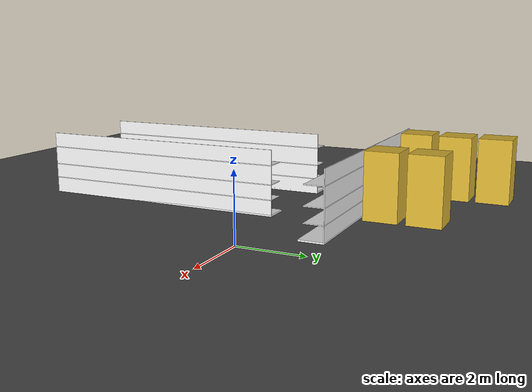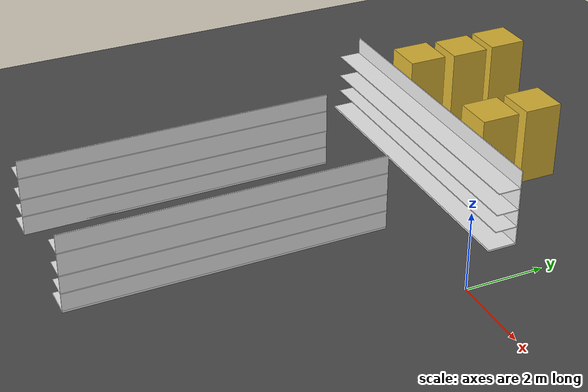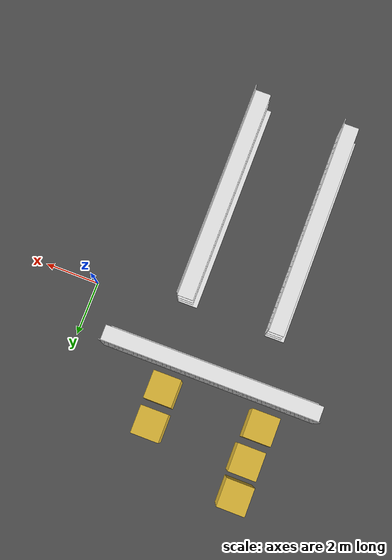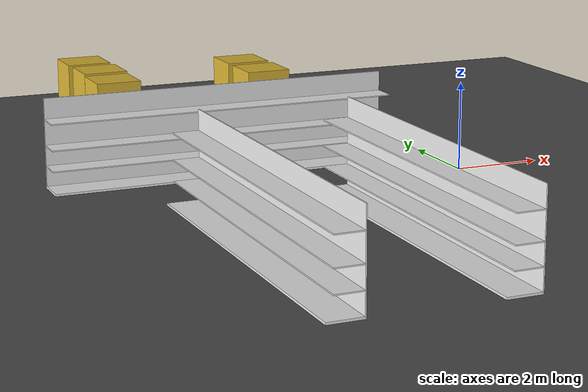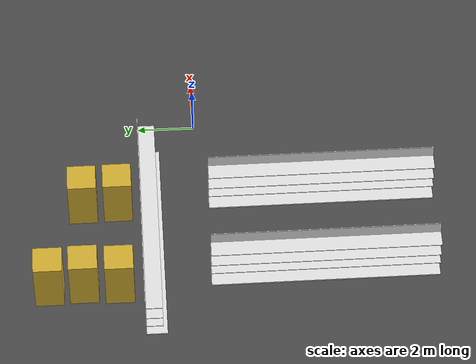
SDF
<sdf version="1.6">
 <world name="default">
  <model name="ground_plane">
   <static>1</static>
   <link name="link">
    <collision name="collision">
     <geometry><plane><normal>0 0 1</normal><size>100 100</size></plane></geometry>
     <surface>
      <contact><collide_bitmask>65535</collide_bitmask></contact>
      <friction><ode><mu>100</mu><mu2>50</mu2></ode></friction>
     </surface>
    </collision>
    <visual name="visual">
     <cast_shadows>0</cast_shadows>
     <geometry><plane><normal>0 0 1</normal><size>100 100</size></plane></geometry>
     <material>
      <script>
       <uri>model://asphalt_plane/materials/scripts</uri>
       <uri>model://asphalt_plane/materials/textures</uri>
       <name>vrc/asphalt</name>
      </script>
     </material>
    </visual>
   </link>
  </model>
  <model name="LongShelfx4">
   <link name="link_0">
    <inertial>
     <mass>0.38468</mass>
     <inertia>
      <ixx>0.0321196</ixx>
      <ixy>0</ixy>
      <ixz>0</ixz>
      <iyy>2.41752</iyy>
      <iyz>0</iyz>
      <izz>2.44951</izz>
     </inertia>
    </inertial>
    <pose>-4.95428 0.681381 -0.638013 0 -0 0</pose>
    <visual name="visual">
     <geometry><box><size>8 0.75 0.05</size></box></geometry>
     <material>
      <lighting>1</lighting>
      <script><uri>file://media/materials/scripts/gazebo.material</uri><name>Gazebo/White</name></script>
      <shader type="vertex"><normal_map>__default__</normal_map></shader>
      <ambient>0.3 0.3 0.3 1</ambient>
      <diffuse>0.7 0.7 0.7 1</diffuse>
      <specular>0.01 0.01 0.01 1</specular>
      <emissive>0 0 0 1</emissive>
     </material>
    </visual>
    <collision name="collision">
     <geometry><box><size>8 0.75 0.05</size></box></geometry>
     <surface>
      <friction>
       <ode><mu>1</mu><mu2>1</mu2><fdir1>0 0 0</fdir1><slip1>0</slip1><slip2>0</slip2></ode>
       <torsional>
        <coefficient>1</coefficient>
        <patch_radius>0</patch_radius>
        <surface_radius>0</surface_radius>
        <use_patch_radius>1</use_patch_radius>
        <ode><slip>0</slip></ode>
       </torsional>
      </friction>
      <bounce><restitution_coefficient>0</restitution_coefficient><threshold>1e+06</threshold></bounce>
      <contact>
       <collide_without_contact>0</collide_without_contact>
       <collide_without_contact_bitmask>1</collide_without_contact_bitmask>
       <collide_bitmask>1</collide_bitmask>
       <ode>
        <soft_cfm>0</soft_cfm>
        <soft_erp>0.2</soft_erp>
        <kp>1e+13</kp>
        <kd>1</kd>
        <max_vel>0.01</max_vel>
        <min_depth>0</min_depth>
       </ode>
       <bullet>
        <split_impulse>1</split_impulse>
        <split_impulse_penetration_threshold>-0.01</split_impulse_penetration_threshold>
        <soft_cfm>0</soft_cfm>
        <soft_erp>0.2</soft_erp>
        <kp>1e+13</kp>
        <kd>1</kd>
       </bullet>
      </contact>
     </surface>
    </collision>
   </link>
   <link name="link_1">
    <inertial>
     <mass>0.748605</mass>
     <inertia><ixx>0.445095</ixx><ixy>0</ixy><ixz>0</ixz><iyy>5.12268</iyy><iyz>0</iyz><izz>4.67771</izz></inertia>
    </inertial>
    <pose>-4.95468 0.318881 0.335328 0 -0 0</pose>
    <visual name="visual">
     <geometry><box><size>8 0.025 2</size></box></geometry>
     <material>
      <lighting>1</lighting>
      <script><uri>file://media/materials/scripts/gazebo.material</uri><name>Gazebo/White</name></script>
      <shader type="vertex"><normal_map>__default__</normal_map></shader>
      <ambient>0.3 0.3 0.3 1</ambient>
      <diffuse>0.7 0.7 0.7 1</diffuse>
      <specular>0.01 0.01 0.01 1</specular>
      <emissive>0 0 0 1</emissive>
     </material>
    </visual>
    <collision name="collision">
     <geometry><box><size>8 0.025 2</size></box></geometry>
     <surface>
      <friction>
       <ode><mu>1</mu><mu2>1</mu2><fdir1>0 0 0</fdir1><slip1>0</slip1><slip2>0</slip2></ode>
       <torsional>
        <coefficient>1</coefficient>
        <patch_radius>0</patch_radius>
        <surface_radius>0</surface_radius>
        <use_patch_radius>1</use_patch_radius>
        <ode><slip>0</slip></ode>
       </torsional>
      </friction>
      <bounce><restitution_coefficient>0</restitution_coefficient><threshold>1e+06</threshold></bounce>
      <contact>
       <collide_without_contact>0</collide_without_contact>
       <collide_without_contact_bitmask>1</collide_without_contact_bitmask>
       <collide_bitmask>1</collide_bitmask>
       <ode>
        <soft_cfm>0</soft_cfm>
        <soft_erp>0.2</soft_erp>
        <kp>1e+13</kp>
        <kd>1</kd>
        <max_vel>0.01</max_vel>
        <min_depth>0</min_depth>
       </ode>
       <bullet>
        <split_impulse>1</split_impulse>
        <split_impulse_penetration_threshold>-0.01</split_impulse_penetration_threshold>
        <soft_cfm>0</soft_cfm>
        <soft_erp>0.2</soft_erp>
        <kp>1e+13</kp>
        <kd>1</kd>
       </bullet>
      </contact>
     </surface>
    </collision>
   </link>
   <link name="link_2">
    <inertial>
     <mass>0.0597214</mass>
     <inertia>
      <ixx>0.00742007</ixx>
      <ixy>0</ixy>
      <ixz>0</ixz>
      <iyy>0.00498871</iyy>
      <iyz>0</iyz>
      <izz>0.0123849</izz>
     </inertia>
    </inertial>
    <pose>-4.95438 0.606368 0.295639 0 -0 0</pose>
    <visual name="visual">
     <geometry><box><size>8 0.6 0.025</size></box></geometry>
     <material>
      <lighting>1</lighting>
      <script><uri>file://media/materials/scripts/gazebo.material</uri><name>Gazebo/White</name></script>
      <shader type="vertex"><normal_map>__default__</normal_map></shader>
      <ambient>0.3 0.3 0.3 1</ambient>
      <diffuse>0.7 0.7 0.7 1</diffuse>
      <specular>0.01 0.01 0.01 1</specular>
      <emissive>0 0 0 1</emissive>
     </material>
    </visual>
    <collision name="collision">
     <geometry><box><size>8 0.600001 0.025</size></box></geometry>
     <surface>
      <friction>
       <ode><mu>1</mu><mu2>1</mu2><fdir1>0 0 0</fdir1><slip1>0</slip1><slip2>0</slip2></ode>
       <torsional>
        <coefficient>1</coefficient>
        <patch_radius>0</patch_radius>
        <surface_radius>0</surface_radius>
        <use_patch_radius>1</use_patch_radius>
        <ode><slip>0</slip></ode>
       </torsional>
      </friction>
      <bounce><restitution_coefficient>0</restitution_coefficient><threshold>1e+06</threshold></bounce>
      <contact>
       <collide_without_contact>0</collide_without_contact>
       <collide_without_contact_bitmask>1</collide_without_contact_bitmask>
       <collide_bitmask>1</collide_bitmask>
       <ode>
        <soft_cfm>0</soft_cfm>
        <soft_erp>0.2</soft_erp>
        <kp>1e+13</kp>
        <kd>1</kd>
        <max_vel>0.01</max_vel>
        <min_depth>0</min_depth>
       </ode>
       <bullet>
        <split_impulse>1</split_impulse>
        <split_impulse_penetration_threshold>-0.01</split_impulse_penetration_threshold>
        <soft_cfm>0</soft_cfm>
        <soft_erp>0.2</soft_erp>
        <kp>1e+13</kp>
        <kd>1</kd>
       </bullet>
      </contact>
     </surface>
    </collision>
   </link>
   <link name="link_2_clone">
    <inertial>
     <mass>0.0597214</mass>
     <inertia>
      <ixx>0.00742007</ixx>
      <ixy>0</ixy>
      <ixz>0</ixz>
      <iyy>0.00498871</iyy>
      <iyz>0</iyz>
      <izz>0.0123849</izz>
     </inertia>
    </inertial>
    <pose>-4.95438 0.606361 0.871858 0 -0 0</pose>
    <visual name="visual">
     <geometry><box><size>8 0.6 0.025</size></box></geometry>
     <material>
      <lighting>1</lighting>
      <script><uri>file://media/materials/scripts/gazebo.material</uri><name>Gazebo/White</name></script>
      <shader type="vertex"><normal_map>__default__</normal_map></shader>
      <ambient>0.3 0.3 0.3 1</ambient>
      <diffuse>0.7 0.7 0.7 1</diffuse>
      <specular>0.01 0.01 0.01 1</specular>
      <emissive>0 0 0 1</emissive>
     </material>
    </visual>
    <collision name="collision">
     <geometry><box><size>8 0.600001 0.025</size></box></geometry>
     <surface>
      <friction>
       <ode><mu>1</mu><mu2>1</mu2><fdir1>0 0 0</fdir1><slip1>0</slip1><slip2>0</slip2></ode>
       <torsional>
        <coefficient>1</coefficient>
        <patch_radius>0</patch_radius>
        <surface_radius>0</surface_radius>
        <use_patch_radius>1</use_patch_radius>
        <ode><slip>0</slip></ode>
       </torsional>
      </friction>
      <bounce><restitution_coefficient>0</restitution_coefficient><threshold>1e+06</threshold></bounce>
      <contact>
       <collide_without_contact>0</collide_without_contact>
       <collide_without_contact_bitmask>1</collide_without_contact_bitmask>
       <collide_bitmask>1</collide_bitmask>
       <ode>
        <soft_cfm>0</soft_cfm>
        <soft_erp>0.2</soft_erp>
        <kp>1e+13</kp>
        <kd>1</kd>
        <max_vel>0.01</max_vel>
        <min_depth>0</min_depth>
       </ode>
       <bullet>
        <split_impulse>1</split_impulse>
        <split_impulse_penetration_threshold>-0.01</split_impulse_penetration_threshold>
        <soft_cfm>0</soft_cfm>
        <soft_erp>0.2</soft_erp>
        <kp>1e+13</kp>
        <kd>1</kd>
       </bullet>
      </contact>
     </surface>
    </collision>
   </link>
   <link name="link_2_clone_0">
    <inertial>
     <mass>0.0597214</mass>
     <inertia>
      <ixx>0.00742007</ixx>
      <ixy>0</ixy>
      <ixz>0</ixz>
      <iyy>0.00498871</iyy>
      <iyz>0</iyz>
      <izz>0.0123849</izz>
     </inertia>
    </inertial>
    <pose>-4.95438 0.606375 -0.163574 0 -0 0</pose>
    <visual name="visual">
     <geometry><box><size>8 0.6 0.025</size></box></geometry>
     <material>
      <lighting>1</lighting>
      <script><uri>file://media/materials/scripts/gazebo.material</uri><name>Gazebo/White</name></script>
      <shader type="vertex"><normal_map>__default__</normal_map></shader>
      <ambient>0.3 0.3 0.3 1</ambient>
      <diffuse>0.7 0.7 0.7 1</diffuse>
      <specular>0.01 0.01 0.01 1</specular>
      <emissive>0 0 0 1</emissive>
     </material>
    </visual>
    <collision name="collision">
     <geometry><box><size>8 0.600001 0.025</size></box></geometry>
     <surface>
      <friction>
       <ode><mu>1</mu><mu2>1</mu2><fdir1>0 0 0</fdir1><slip1>0</slip1><slip2>0</slip2></ode>
       <torsional>
        <coefficient>1</coefficient>
        <patch_radius>0</patch_radius>
        <surface_radius>0</surface_radius>
        <use_patch_radius>1</use_patch_radius>
        <ode><slip>0</slip></ode>
       </torsional>
      </friction>
      <bounce><restitution_coefficient>0</restitution_coefficient><threshold>1e+06</threshold></bounce>
      <contact>
       <collide_without_contact>0</collide_without_contact>
       <collide_without_contact_bitmask>1</collide_without_contact_bitmask>
       <collide_bitmask>1</collide_bitmask>
       <ode>
        <soft_cfm>0</soft_cfm>
        <soft_erp>0.2</soft_erp>
        <kp>1e+13</kp>
        <kd>1</kd>
        <max_vel>0.01</max_vel>
        <min_depth>0</min_depth>
       </ode>
       <bullet>
        <split_impulse>1</split_impulse>
        <split_impulse_penetration_threshold>-0.01</split_impulse_penetration_threshold>
        <soft_cfm>0</soft_cfm>
        <soft_erp>0.2</soft_erp>
        <kp>1e+13</kp>
        <kd>1</kd>
       </bullet>
      </contact>
     </surface>
    </collision>
   </link>
   <joint name="link_1_JOINT_4" type="fixed">
    <parent>link_1</parent>
    <child>link_0</child>
    <physics>
     <ode><limit><cfm>0</cfm><erp>0.2</erp></limit><suspension><cfm>0</cfm><erp>0.2</erp></suspension></ode>
    </physics>
   </joint>
   <joint name="link_1_JOINT_5" type="fixed">
    <parent>link_1</parent>
    <child>link_2_clone_0</child>
    <physics>
     <ode><limit><cfm>0</cfm><erp>0.2</erp></limit><suspension><cfm>0</cfm><erp>0.2</erp></suspension></ode>
    </physics>
   </joint>
   <joint name="link_1_JOINT_6" type="fixed">
    <parent>link_1</parent>
    <child>link_2</child>
    <physics>
     <ode><limit><cfm>0</cfm><erp>0.2</erp></limit><suspension><cfm>0</cfm><erp>0.2</erp></suspension></ode>
    </physics>
   </joint>
   <joint name="link_1_JOINT_7" type="fixed">
    <parent>link_1</parent>
    <child>link_2_clone</child>
    <physics>
     <ode><limit><cfm>0</cfm><erp>0.2</erp></limit><suspension><cfm>0</cfm><erp>0.2</erp></suspension></ode>
    </physics>
   </joint>
   <static>0</static>
   <pose>-10.0237 2.32685 0.665428 -0.002287 -0 -3.14125</pose>
  </model>
  <model name="LongShelfx4_clone_0_clone">
   <link name="link_0">
    <inertial>
     <mass>0.38468</mass>
     <inertia>
      <ixx>0.0321196</ixx>
      <ixy>0</ixy>
      <ixz>0</ixz>
      <iyy>2.41752</iyy>
      <iyz>0</iyz>
      <izz>2.44951</izz>
     </inertia>
    </inertial>
    <pose>-4.95428 0.681381 -0.638013 0 -0 0</pose>
    <visual name="visual">
     <geometry><box><size>8 0.75 0.05</size></box></geometry>
     <material>
      <lighting>1</lighting>
      <script><uri>file://media/materials/scripts/gazebo.material</uri><name>Gazebo/White</name></script>
      <shader type="vertex"><normal_map>__default__</normal_map></shader>
      <ambient>0.3 0.3 0.3 1</ambient>
      <diffuse>0.7 0.7 0.7 1</diffuse>
      <specular>0.01 0.01 0.01 1</specular>
      <emissive>0 0 0 1</emissive>
     </material>
    </visual>
    <collision name="collision">
     <geometry><box><size>8 0.75 0.05</size></box></geometry>
     <surface>
      <friction>
       <ode><mu>1</mu><mu2>1</mu2><fdir1>0 0 0</fdir1><slip1>0</slip1><slip2>0</slip2></ode>
       <torsional>
        <coefficient>1</coefficient>
        <patch_radius>0</patch_radius>
        <surface_radius>0</surface_radius>
        <use_patch_radius>1</use_patch_radius>
        <ode><slip>0</slip></ode>
       </torsional>
      </friction>
      <bounce><restitution_coefficient>0</restitution_coefficient><threshold>1e+06</threshold></bounce>
      <contact>
       <collide_without_contact>0</collide_without_contact>
       <collide_without_contact_bitmask>1</collide_without_contact_bitmask>
       <collide_bitmask>1</collide_bitmask>
       <ode>
        <soft_cfm>0</soft_cfm>
        <soft_erp>0.2</soft_erp>
        <kp>1e+13</kp>
        <kd>1</kd>
        <max_vel>0.01</max_vel>
        <min_depth>0</min_depth>
       </ode>
       <bullet>
        <split_impulse>1</split_impulse>
        <split_impulse_penetration_threshold>-0.01</split_impulse_penetration_threshold>
        <soft_cfm>0</soft_cfm>
        <soft_erp>0.2</soft_erp>
        <kp>1e+13</kp>
        <kd>1</kd>
       </bullet>
      </contact>
     </surface>
    </collision>
   </link>
   <link name="link_1">
    <inertial>
     <mass>0.748605</mass>
     <inertia><ixx>0.445095</ixx><ixy>0</ixy><ixz>0</ixz><iyy>5.12268</iyy><iyz>0</iyz><izz>4.67771</izz></inertia>
    </inertial>
    <pose>-4.95468 0.318881 0.335328 0 -0 0</pose>
    <visual name="visual">
     <geometry><box><size>8 0.025 2</size></box></geometry>
     <material>
      <lighting>1</lighting>
      <script><uri>file://media/materials/scripts/gazebo.material</uri><name>Gazebo/White</name></script>
      <shader type="vertex"><normal_map>__default__</normal_map></shader>
      <ambient>0.3 0.3 0.3 1</ambient>
      <diffuse>0.7 0.7 0.7 1</diffuse>
      <specular>0.01 0.01 0.01 1</specular>
      <emissive>0 0 0 1</emissive>
     </material>
    </visual>
    <collision name="collision">
     <geometry><box><size>8 0.025 2</size></box></geometry>
     <surface>
      <friction>
       <ode><mu>1</mu><mu2>1</mu2><fdir1>0 0 0</fdir1><slip1>0</slip1><slip2>0</slip2></ode>
       <torsional>
        <coefficient>1</coefficient>
        <patch_radius>0</patch_radius>
        <surface_radius>0</surface_radius>
        <use_patch_radius>1</use_patch_radius>
        <ode><slip>0</slip></ode>
       </torsional>
      </friction>
      <bounce><restitution_coefficient>0</restitution_coefficient><threshold>1e+06</threshold></bounce>
      <contact>
       <collide_without_contact>0</collide_without_contact>
       <collide_without_contact_bitmask>1</collide_without_contact_bitmask>
       <collide_bitmask>1</collide_bitmask>
       <ode>
        <soft_cfm>0</soft_cfm>
        <soft_erp>0.2</soft_erp>
        <kp>1e+13</kp>
        <kd>1</kd>
        <max_vel>0.01</max_vel>
        <min_depth>0</min_depth>
       </ode>
       <bullet>
        <split_impulse>1</split_impulse>
        <split_impulse_penetration_threshold>-0.01</split_impulse_penetration_threshold>
        <soft_cfm>0</soft_cfm>
        <soft_erp>0.2</soft_erp>
        <kp>1e+13</kp>
        <kd>1</kd>
       </bullet>
      </contact>
     </surface>
    </collision>
   </link>
   <link name="link_2">
    <inertial>
     <mass>0.0597214</mass>
     <inertia>
      <ixx>0.00742007</ixx>
      <ixy>0</ixy>
      <ixz>0</ixz>
      <iyy>0.00498871</iyy>
      <iyz>0</iyz>
      <izz>0.0123849</izz>
     </inertia>
    </inertial>
    <pose>-4.95438 0.606368 0.295639 0 -0 0</pose>
    <visual name="visual">
     <geometry><box><size>8 0.6 0.025</size></box></geometry>
     <material>
      <lighting>1</lighting>
      <script><uri>file://media/materials/scripts/gazebo.material</uri><name>Gazebo/White</name></script>
      <shader type="vertex"><normal_map>__default__</normal_map></shader>
      <ambient>0.3 0.3 0.3 1</ambient>
      <diffuse>0.7 0.7 0.7 1</diffuse>
      <specular>0.01 0.01 0.01 1</specular>
      <emissive>0 0 0 1</emissive>
     </material>
    </visual>
    <collision name="collision">
     <geometry><box><size>8 0.600001 0.025</size></box></geometry>
     <surface>
      <friction>
       <ode><mu>1</mu><mu2>1</mu2><fdir1>0 0 0</fdir1><slip1>0</slip1><slip2>0</slip2></ode>
       <torsional>
        <coefficient>1</coefficient>
        <patch_radius>0</patch_radius>
        <surface_radius>0</surface_radius>
        <use_patch_radius>1</use_patch_radius>
        <ode><slip>0</slip></ode>
       </torsional>
      </friction>
      <bounce><restitution_coefficient>0</restitution_coefficient><threshold>1e+06</threshold></bounce>
      <contact>
       <collide_without_contact>0</collide_without_contact>
       <collide_without_contact_bitmask>1</collide_without_contact_bitmask>
       <collide_bitmask>1</collide_bitmask>
       <ode>
        <soft_cfm>0</soft_cfm>
        <soft_erp>0.2</soft_erp>
        <kp>1e+13</kp>
        <kd>1</kd>
        <max_vel>0.01</max_vel>
        <min_depth>0</min_depth>
       </ode>
       <bullet>
        <split_impulse>1</split_impulse>
        <split_impulse_penetration_threshold>-0.01</split_impulse_penetration_threshold>
        <soft_cfm>0</soft_cfm>
        <soft_erp>0.2</soft_erp>
        <kp>1e+13</kp>
        <kd>1</kd>
       </bullet>
      </contact>
     </surface>
    </collision>
   </link>
   <link name="link_2_clone">
    <inertial>
     <mass>0.0597214</mass>
     <inertia>
      <ixx>0.00742007</ixx>
      <ixy>0</ixy>
      <ixz>0</ixz>
      <iyy>0.00498871</iyy>
      <iyz>0</iyz>
      <izz>0.0123849</izz>
     </inertia>
    </inertial>
    <pose>-4.95438 0.606361 0.871858 0 -0 0</pose>
    <visual name="visual">
     <geometry><box><size>8 0.6 0.025</size></box></geometry>
     <material>
      <lighting>1</lighting>
      <script><uri>file://media/materials/scripts/gazebo.material</uri><name>Gazebo/White</name></script>
      <shader type="vertex"><normal_map>__default__</normal_map></shader>
      <ambient>0.3 0.3 0.3 1</ambient>
      <diffuse>0.7 0.7 0.7 1</diffuse>
      <specular>0.01 0.01 0.01 1</specular>
      <emissive>0 0 0 1</emissive>
     </material>
    </visual>
    <collision name="collision">
     <geometry><box><size>8 0.600001 0.025</size></box></geometry>
     <surface>
      <friction>
       <ode><mu>1</mu><mu2>1</mu2><fdir1>0 0 0</fdir1><slip1>0</slip1><slip2>0</slip2></ode>
       <torsional>
        <coefficient>1</coefficient>
        <patch_radius>0</patch_radius>
        <surface_radius>0</surface_radius>
        <use_patch_radius>1</use_patch_radius>
        <ode><slip>0</slip></ode>
       </torsional>
      </friction>
      <bounce><restitution_coefficient>0</restitution_coefficient><threshold>1e+06</threshold></bounce>
      <contact>
       <collide_without_contact>0</collide_without_contact>
       <collide_without_contact_bitmask>1</collide_without_contact_bitmask>
       <collide_bitmask>1</collide_bitmask>
       <ode>
        <soft_cfm>0</soft_cfm>
        <soft_erp>0.2</soft_erp>
        <kp>1e+13</kp>
        <kd>1</kd>
        <max_vel>0.01</max_vel>
        <min_depth>0</min_depth>
       </ode>
       <bullet>
        <split_impulse>1</split_impulse>
        <split_impulse_penetration_threshold>-0.01</split_impulse_penetration_threshold>
        <soft_cfm>0</soft_cfm>
        <soft_erp>0.2</soft_erp>
        <kp>1e+13</kp>
        <kd>1</kd>
       </bullet>
      </contact>
     </surface>
    </collision>
   </link>
   <link name="link_2_clone_0">
    <inertial>
     <mass>0.0597214</mass>
     <inertia>
      <ixx>0.00742007</ixx>
      <ixy>0</ixy>
      <ixz>0</ixz>
      <iyy>0.00498871</iyy>
      <iyz>0</iyz>
      <izz>0.0123849</izz>
     </inertia>
    </inertial>
    <pose>-4.95438 0.606375 -0.163574 0 -0 0</pose>
    <visual name="visual">
     <geometry><box><size>8 0.6 0.025</size></box></geometry>
     <material>
      <lighting>1</lighting>
      <script><uri>file://media/materials/scripts/gazebo.material</uri><name>Gazebo/White</name></script>
      <shader type="vertex"><normal_map>__default__</normal_map></shader>
      <ambient>0.3 0.3 0.3 1</ambient>
      <diffuse>0.7 0.7 0.7 1</diffuse>
      <specular>0.01 0.01 0.01 1</specular>
      <emissive>0 0 0 1</emissive>
     </material>
    </visual>
    <collision name="collision">
     <geometry><box><size>8 0.600001 0.025</size></box></geometry>
     <surface>
      <friction>
       <ode><mu>1</mu><mu2>1</mu2><fdir1>0 0 0</fdir1><slip1>0</slip1><slip2>0</slip2></ode>
       <torsional>
        <coefficient>1</coefficient>
        <patch_radius>0</patch_radius>
        <surface_radius>0</surface_radius>
        <use_patch_radius>1</use_patch_radius>
        <ode><slip>0</slip></ode>
       </torsional>
      </friction>
      <bounce><restitution_coefficient>0</restitution_coefficient><threshold>1e+06</threshold></bounce>
      <contact>
       <collide_without_contact>0</collide_without_contact>
       <collide_without_contact_bitmask>1</collide_without_contact_bitmask>
       <collide_bitmask>1</collide_bitmask>
       <ode>
        <soft_cfm>0</soft_cfm>
        <soft_erp>0.2</soft_erp>
        <kp>1e+13</kp>
        <kd>1</kd>
        <max_vel>0.01</max_vel>
        <min_depth>0</min_depth>
       </ode>
       <bullet>
        <split_impulse>1</split_impulse>
        <split_impulse_penetration_threshold>-0.01</split_impulse_penetration_threshold>
        <soft_cfm>0</soft_cfm>
        <soft_erp>0.2</soft_erp>
        <kp>1e+13</kp>
        <kd>1</kd>
       </bullet>
      </contact>
     </surface>
    </collision>
   </link>
   <joint name="link_1_JOINT_4" type="fixed">
    <parent>link_1</parent>
    <child>link_0</child>
    <physics>
     <ode><limit><cfm>0</cfm><erp>0.2</erp></limit><suspension><cfm>0</cfm><erp>0.2</erp></suspension></ode>
    </physics>
   </joint>
   <joint name="link_1_JOINT_5" type="fixed">
    <parent>link_1</parent>
    <child>link_2_clone_0</child>
    <physics>
     <ode><limit><cfm>0</cfm><erp>0.2</erp></limit><suspension><cfm>0</cfm><erp>0.2</erp></suspension></ode>
    </physics>
   </joint>
   <joint name="link_1_JOINT_6" type="fixed">
    <parent>link_1</parent>
    <child>link_2</child>
    <physics>
     <ode><limit><cfm>0</cfm><erp>0.2</erp></limit><suspension><cfm>0</cfm><erp>0.2</erp></suspension></ode>
    </physics>
   </joint>
   <joint name="link_1_JOINT_7" type="fixed">
    <parent>link_1</parent>
    <child>link_2_clone</child>
    <physics>
     <ode><limit><cfm>0</cfm><erp>0.2</erp></limit><suspension><cfm>0</cfm><erp>0.2</erp></suspension></ode>
    </physics>
   </joint>
   <static>0</static>
   <pose>-6.05922 0.615705 0.665428 -0.002288 -0 1.57297</pose>
  </model>
  <model name="LongShelfx4_clone_0_clone_clone_clone">
   <link name="link_0">
    <inertial>
     <mass>0.38468</mass>
     <inertia>
      <ixx>0.0321196</ixx>
      <ixy>0</ixy>
      <ixz>0</ixz>
      <iyy>2.41752</iyy>
      <iyz>0</iyz>
      <izz>2.44951</izz>
     </inertia>
    </inertial>
    <pose>-4.95428 0.681381 -0.638013 0 -0 0</pose>
    <visual name="visual">
     <geometry><box><size>8 0.75 0.05</size></box></geometry>
     <material>
      <lighting>1</lighting>
      <script><uri>file://media/materials/scripts/gazebo.material</uri><name>Gazebo/White</name></script>
      <shader type="vertex"><normal_map>__default__</normal_map></shader>
      <ambient>0.3 0.3 0.3 1</ambient>
      <diffuse>0.7 0.7 0.7 1</diffuse>
      <specular>0.01 0.01 0.01 1</specular>
      <emissive>0 0 0 1</emissive>
     </material>
    </visual>
    <collision name="collision">
     <geometry><box><size>8 0.75 0.05</size></box></geometry>
     <surface>
      <friction>
       <ode><mu>1</mu><mu2>1</mu2><fdir1>0 0 0</fdir1><slip1>0</slip1><slip2>0</slip2></ode>
       <torsional>
        <coefficient>1</coefficient>
        <patch_radius>0</patch_radius>
        <surface_radius>0</surface_radius>
        <use_patch_radius>1</use_patch_radius>
        <ode><slip>0</slip></ode>
       </torsional>
      </friction>
      <bounce><restitution_coefficient>0</restitution_coefficient><threshold>1e+06</threshold></bounce>
      <contact>
       <collide_without_contact>0</collide_without_contact>
       <collide_without_contact_bitmask>1</collide_without_contact_bitmask>
       <collide_bitmask>1</collide_bitmask>
       <ode>
        <soft_cfm>0</soft_cfm>
        <soft_erp>0.2</soft_erp>
        <kp>1e+13</kp>
        <kd>1</kd>
        <max_vel>0.01</max_vel>
        <min_depth>0</min_depth>
       </ode>
       <bullet>
        <split_impulse>1</split_impulse>
        <split_impulse_penetration_threshold>-0.01</split_impulse_penetration_threshold>
        <soft_cfm>0</soft_cfm>
        <soft_erp>0.2</soft_erp>
        <kp>1e+13</kp>
        <kd>1</kd>
       </bullet>
      </contact>
     </surface>
    </collision>
   </link>
   <link name="link_1">
    <inertial>
     <mass>0.748605</mass>
     <inertia><ixx>0.445095</ixx><ixy>0</ixy><ixz>0</ixz><iyy>5.12268</iyy><iyz>0</iyz><izz>4.67771</izz></inertia>
    </inertial>
    <pose>-4.95468 0.318881 0.335328 0 -0 0</pose>
    <visual name="visual">
     <geometry><box><size>8 0.025 2</size></box></geometry>
     <material>
      <lighting>1</lighting>
      <script><uri>file://media/materials/scripts/gazebo.material</uri><name>Gazebo/White</name></script>
      <shader type="vertex"><normal_map>__default__</normal_map></shader>
      <ambient>0.3 0.3 0.3 1</ambient>
      <diffuse>0.7 0.7 0.7 1</diffuse>
      <specular>0.01 0.01 0.01 1</specular>
      <emissive>0 0 0 1</emissive>
     </material>
    </visual>
    <collision name="collision">
     <geometry><box><size>8 0.025 2</size></box></geometry>
     <surface>
      <friction>
       <ode><mu>1</mu><mu2>1</mu2><fdir1>0 0 0</fdir1><slip1>0</slip1><slip2>0</slip2></ode>
       <torsional>
        <coefficient>1</coefficient>
        <patch_radius>0</patch_radius>
        <surface_radius>0</surface_radius>
        <use_patch_radius>1</use_patch_radius>
        <ode><slip>0</slip></ode>
       </torsional>
      </friction>
      <bounce><restitution_coefficient>0</restitution_coefficient><threshold>1e+06</threshold></bounce>
      <contact>
       <collide_without_contact>0</collide_without_contact>
       <collide_without_contact_bitmask>1</collide_without_contact_bitmask>
       <collide_bitmask>1</collide_bitmask>
       <ode>
        <soft_cfm>0</soft_cfm>
        <soft_erp>0.2</soft_erp>
        <kp>1e+13</kp>
        <kd>1</kd>
        <max_vel>0.01</max_vel>
        <min_depth>0</min_depth>
       </ode>
       <bullet>
        <split_impulse>1</split_impulse>
        <split_impulse_penetration_threshold>-0.01</split_impulse_penetration_threshold>
        <soft_cfm>0</soft_cfm>
        <soft_erp>0.2</soft_erp>
        <kp>1e+13</kp>
        <kd>1</kd>
       </bullet>
      </contact>
     </surface>
    </collision>
   </link>
   <link name="link_2">
    <inertial>
     <mass>0.0597214</mass>
     <inertia>
      <ixx>0.00742007</ixx>
      <ixy>0</ixy>
      <ixz>0</ixz>
      <iyy>0.00498871</iyy>
      <iyz>0</iyz>
      <izz>0.0123849</izz>
     </inertia>
    </inertial>
    <pose>-4.95438 0.606368 0.295639 0 -0 0</pose>
    <visual name="visual">
     <geometry><box><size>8 0.6 0.025</size></box></geometry>
     <material>
      <lighting>1</lighting>
      <script><uri>file://media/materials/scripts/gazebo.material</uri><name>Gazebo/White</name></script>
      <shader type="vertex"><normal_map>__default__</normal_map></shader>
      <ambient>0.3 0.3 0.3 1</ambient>
      <diffuse>0.7 0.7 0.7 1</diffuse>
      <specular>0.01 0.01 0.01 1</specular>
      <emissive>0 0 0 1</emissive>
     </material>
    </visual>
    <collision name="collision">
     <geometry><box><size>8 0.600001 0.025</size></box></geometry>
     <surface>
      <friction>
       <ode><mu>1</mu><mu2>1</mu2><fdir1>0 0 0</fdir1><slip1>0</slip1><slip2>0</slip2></ode>
       <torsional>
        <coefficient>1</coefficient>
        <patch_radius>0</patch_radius>
        <surface_radius>0</surface_radius>
        <use_patch_radius>1</use_patch_radius>
        <ode><slip>0</slip></ode>
       </torsional>
      </friction>
      <bounce><restitution_coefficient>0</restitution_coefficient><threshold>1e+06</threshold></bounce>
      <contact>
       <collide_without_contact>0</collide_without_contact>
       <collide_without_contact_bitmask>1</collide_without_contact_bitmask>
       <collide_bitmask>1</collide_bitmask>
       <ode>
        <soft_cfm>0</soft_cfm>
        <soft_erp>0.2</soft_erp>
        <kp>1e+13</kp>
        <kd>1</kd>
        <max_vel>0.01</max_vel>
        <min_depth>0</min_depth>
       </ode>
       <bullet>
        <split_impulse>1</split_impulse>
        <split_impulse_penetration_threshold>-0.01</split_impulse_penetration_threshold>
        <soft_cfm>0</soft_cfm>
        <soft_erp>0.2</soft_erp>
        <kp>1e+13</kp>
        <kd>1</kd>
       </bullet>
      </contact>
     </surface>
    </collision>
   </link>
   <link name="link_2_clone">
    <inertial>
     <mass>0.0597214</mass>
     <inertia>
      <ixx>0.00742007</ixx>
      <ixy>0</ixy>
      <ixz>0</ixz>
      <iyy>0.00498871</iyy>
      <iyz>0</iyz>
      <izz>0.0123849</izz>
     </inertia>
    </inertial>
    <pose>-4.95438 0.606361 0.871858 0 -0 0</pose>
    <visual name="visual">
     <geometry><box><size>8 0.6 0.025</size></box></geometry>
     <material>
      <lighting>1</lighting>
      <script><uri>file://media/materials/scripts/gazebo.material</uri><name>Gazebo/White</name></script>
      <shader type="vertex"><normal_map>__default__</normal_map></shader>
      <ambient>0.3 0.3 0.3 1</ambient>
      <diffuse>0.7 0.7 0.7 1</diffuse>
      <specular>0.01 0.01 0.01 1</specular>
      <emissive>0 0 0 1</emissive>
     </material>
    </visual>
    <collision name="collision">
     <geometry><box><size>8 0.600001 0.025</size></box></geometry>
     <surface>
      <friction>
       <ode><mu>1</mu><mu2>1</mu2><fdir1>0 0 0</fdir1><slip1>0</slip1><slip2>0</slip2></ode>
       <torsional>
        <coefficient>1</coefficient>
        <patch_radius>0</patch_radius>
        <surface_radius>0</surface_radius>
        <use_patch_radius>1</use_patch_radius>
        <ode><slip>0</slip></ode>
       </torsional>
      </friction>
      <bounce><restitution_coefficient>0</restitution_coefficient><threshold>1e+06</threshold></bounce>
      <contact>
       <collide_without_contact>0</collide_without_contact>
       <collide_without_contact_bitmask>1</collide_without_contact_bitmask>
       <collide_bitmask>1</collide_bitmask>
       <ode>
        <soft_cfm>0</soft_cfm>
        <soft_erp>0.2</soft_erp>
        <kp>1e+13</kp>
        <kd>1</kd>
        <max_vel>0.01</max_vel>
        <min_depth>0</min_depth>
       </ode>
       <bullet>
        <split_impulse>1</split_impulse>
        <split_impulse_penetration_threshold>-0.01</split_impulse_penetration_threshold>
        <soft_cfm>0</soft_cfm>
        <soft_erp>0.2</soft_erp>
        <kp>1e+13</kp>
        <kd>1</kd>
       </bullet>
      </contact>
     </surface>
    </collision>
   </link>
   <link name="link_2_clone_0">
    <inertial>
     <mass>0.0597214</mass>
     <inertia>
      <ixx>0.00742007</ixx>
      <ixy>0</ixy>
      <ixz>0</ixz>
      <iyy>0.00498871</iyy>
      <iyz>0</iyz>
      <izz>0.0123849</izz>
     </inertia>
    </inertial>
    <pose>-4.95438 0.606375 -0.163574 0 -0 0</pose>
    <visual name="visual">
     <geometry><box><size>8 0.6 0.025</size></box></geometry>
     <material>
      <lighting>1</lighting>
      <script><uri>file://media/materials/scripts/gazebo.material</uri><name>Gazebo/White</name></script>
      <shader type="vertex"><normal_map>__default__</normal_map></shader>
      <ambient>0.3 0.3 0.3 1</ambient>
      <diffuse>0.7 0.7 0.7 1</diffuse>
      <specular>0.01 0.01 0.01 1</specular>
      <emissive>0 0 0 1</emissive>
     </material>
    </visual>
    <collision name="collision">
     <geometry><box><size>8 0.600001 0.025</size></box></geometry>
     <surface>
      <friction>
       <ode><mu>1</mu><mu2>1</mu2><fdir1>0 0 0</fdir1><slip1>0</slip1><slip2>0</slip2></ode>
       <torsional>
        <coefficient>1</coefficient>
        <patch_radius>0</patch_radius>
        <surface_radius>0</surface_radius>
        <use_patch_radius>1</use_patch_radius>
        <ode><slip>0</slip></ode>
       </torsional>
      </friction>
      <bounce><restitution_coefficient>0</restitution_coefficient><threshold>1e+06</threshold></bounce>
      <contact>
       <collide_without_contact>0</collide_without_contact>
       <collide_without_contact_bitmask>1</collide_without_contact_bitmask>
       <collide_bitmask>1</collide_bitmask>
       <ode>
        <soft_cfm>0</soft_cfm>
        <soft_erp>0.2</soft_erp>
        <kp>1e+13</kp>
        <kd>1</kd>
        <max_vel>0.01</max_vel>
        <min_depth>0</min_depth>
       </ode>
       <bullet>
        <split_impulse>1</split_impulse>
        <split_impulse_penetration_threshold>-0.01</split_impulse_penetration_threshold>
        <soft_cfm>0</soft_cfm>
        <soft_erp>0.2</soft_erp>
        <kp>1e+13</kp>
        <kd>1</kd>
       </bullet>
      </contact>
     </surface>
    </collision>
   </link>
   <joint name="link_1_JOINT_4" type="fixed">
    <parent>link_1</parent>
    <child>link_0</child>
    <physics>
     <ode><limit><cfm>0</cfm><erp>0.2</erp></limit><suspension><cfm>0</cfm><erp>0.2</erp></suspension></ode>
    </physics>
   </joint>
   <joint name="link_1_JOINT_5" type="fixed">
    <parent>link_1</parent>
    <child>link_2_clone_0</child>
    <physics>
     <ode><limit><cfm>0</cfm><erp>0.2</erp></limit><suspension><cfm>0</cfm><erp>0.2</erp></suspension></ode>
    </physics>
   </joint>
   <joint name="link_1_JOINT_6" type="fixed">
    <parent>link_1</parent>
    <child>link_2</child>
    <physics>
     <ode><limit><cfm>0</cfm><erp>0.2</erp></limit><suspension><cfm>0</cfm><erp>0.2</erp></suspension></ode>
    </physics>
   </joint>
   <joint name="link_1_JOINT_7" type="fixed">
    <parent>link_1</parent>
    <child>link_2_clone</child>
    <physics>
     <ode><limit><cfm>0</cfm><erp>0.2</erp></limit><suspension><cfm>0</cfm><erp>0.2</erp></suspension></ode>
    </physics>
   </joint>
   <static>0</static>
   <pose>-2.6723 0.54295 0.665428 -0.002287 -0 1.57278</pose>
  </model>
  <model name="cube_1x1x2_clone">
   <link name="link">
    <pose>0 0 0.05 0 -0 0</pose>
    <inertial>
     <mass>0.5167</mass>
     <inertia>
      <ixx>0.00086117</ixx>
      <ixy>0</ixy>
      <ixz>0</ixz>
      <iyy>0.00086117</iyy>
      <iyz>0</iyz>
      <izz>0.00086117</izz>
     </inertia>
    </inertial>
    <visual name="visual">
     <geometry><box><size>1 1 2</size></box></geometry>
     <material>
      <script><uri>file://media/materials/scripts/gazebo.material</uri><name>Gazebo/Gold</name></script>
      <shader type="vertex"><normal_map>__default__</normal_map></shader>
      <ambient>1 1 1 1</ambient>
      <diffuse>1 1 1 1</diffuse>
      <specular>0.2 0.2 0.2 1</specular>
      <emissive>0 0 0 1</emissive>
     </material>
    </visual>
    <collision name="collision">
     <geometry><box><size>1 1 2</size></box></geometry>
     <surface>
      <friction>
       <ode><mu>1</mu><mu2>1</mu2><fdir1>0 0 0</fdir1><slip1>0</slip1><slip2>0</slip2></ode>
       <torsional>
        <coefficient>1</coefficient>
        <patch_radius>0</patch_radius>
        <surface_radius>0.01</surface_radius>
        <use_patch_radius>0</use_patch_radius>
        <ode><slip>0</slip></ode>
       </torsional>
      </friction>
      <bounce><restitution_coefficient>0</restitution_coefficient><threshold>1e+06</threshold></bounce>
      <contact>
       <collide_without_contact>0</collide_without_contact>
       <collide_without_contact_bitmask>1</collide_without_contact_bitmask>
       <collide_bitmask>1</collide_bitmask>
       <ode>
        <soft_cfm>0</soft_cfm>
        <soft_erp>0.2</soft_erp>
        <kp>100000</kp>
        <kd>100</kd>
        <max_vel>100</max_vel>
        <min_depth>0.001</min_depth>
       </ode>
       <bullet>
        <split_impulse>1</split_impulse>
        <split_impulse_penetration_threshold>-0.01</split_impulse_penetration_threshold>
        <soft_cfm>0</soft_cfm>
        <soft_erp>0.2</soft_erp>
        <kp>100000</kp>
        <kd>100</kd>
       </bullet>
      </contact>
     </surface>
    </collision>
   </link>
   <static>0</static>
   <pose>-7.27128 2.85072 1.094 -3e-06 7.7e-05 0.001092</pose>
  </model>
  <model name="cube_1x1x2_clone_clone">
   <link name="link">
    <pose>0 0 0.05 0 -0 0</pose>
    <inertial>
     <mass>0.5167</mass>
     <inertia>
      <ixx>0.00086117</ixx>
      <ixy>0</ixy>
      <ixz>0</ixz>
      <iyy>0.00086117</iyy>
      <iyz>0</iyz>
      <izz>0.00086117</izz>
     </inertia>
    </inertial>
    <visual name="visual">
     <geometry><box><size>1 1 2</size></box></geometry>
     <material>
      <script><uri>file://media/materials/scripts/gazebo.material</uri><name>Gazebo/Gold</name></script>
      <shader type="vertex"><normal_map>__default__</normal_map></shader>
      <ambient>1 1 1 1</ambient>
      <diffuse>1 1 1 1</diffuse>
      <specular>0.2 0.2 0.2 1</specular>
      <emissive>0 0 0 1</emissive>
     </material>
    </visual>
    <collision name="collision">
     <geometry><box><size>1 1 2</size></box></geometry>
     <surface>
      <friction>
       <ode><mu>1</mu><mu2>1</mu2><fdir1>0 0 0</fdir1><slip1>0</slip1><slip2>0</slip2></ode>
       <torsional>
        <coefficient>1</coefficient>
        <patch_radius>0</patch_radius>
        <surface_radius>0.01</surface_radius>
        <use_patch_radius>0</use_patch_radius>
        <ode><slip>0</slip></ode>
       </torsional>
      </friction>
      <bounce><restitution_coefficient>0</restitution_coefficient><threshold>1e+06</threshold></bounce>
      <contact>
       <collide_without_contact>0</collide_without_contact>
       <collide_without_contact_bitmask>1</collide_without_contact_bitmask>
       <collide_bitmask>1</collide_bitmask>
       <ode>
        <soft_cfm>0</soft_cfm>
        <soft_erp>0.2</soft_erp>
        <kp>100000</kp>
        <kd>100</kd>
        <max_vel>100</max_vel>
        <min_depth>0.001</min_depth>
       </ode>
       <bullet>
        <split_impulse>1</split_impulse>
        <split_impulse_penetration_threshold>-0.01</split_impulse_penetration_threshold>
        <soft_cfm>0</soft_cfm>
        <soft_erp>0.2</soft_erp>
        <kp>100000</kp>
        <kd>100</kd>
       </bullet>
      </contact>
     </surface>
    </collision>
   </link>
   <static>0</static>
   <pose>-7.20696 4.08734 1.09402 -0 -0.000124 0.000617</pose>
  </model>
  <model name="cube_1x1x2_clone_clone_0">
   <link name="link">
    <pose>0 0 0.05 0 -0 0</pose>
    <inertial>
     <mass>0.5167</mass>
     <inertia>
      <ixx>0.00086117</ixx>
      <ixy>0</ixy>
      <ixz>0</ixz>
      <iyy>0.00086117</iyy>
      <iyz>0</iyz>
      <izz>0.00086117</izz>
     </inertia>
    </inertial>
    <visual name="visual">
     <geometry><box><size>1 1 2</size></box></geometry>
     <material>
      <script><uri>file://media/materials/scripts/gazebo.material</uri><name>Gazebo/Gold</name></script>
      <shader type="vertex"><normal_map>__default__</normal_map></shader>
      <ambient>1 1 1 1</ambient>
      <diffuse>1 1 1 1</diffuse>
      <specular>0.2 0.2 0.2 1</specular>
      <emissive>0 0 0 1</emissive>
     </material>
    </visual>
    <collision name="collision">
     <geometry><box><size>1 1 2</size></box></geometry>
     <surface>
      <friction>
       <ode><mu>1</mu><mu2>1</mu2><fdir1>0 0 0</fdir1><slip1>0</slip1><slip2>0</slip2></ode>
       <torsional>
        <coefficient>1</coefficient>
        <patch_radius>0</patch_radius>
        <surface_radius>0.01</surface_radius>
        <use_patch_radius>0</use_patch_radius>
        <ode><slip>0</slip></ode>
       </torsional>
      </friction>
      <bounce><restitution_coefficient>0</restitution_coefficient><threshold>1e+06</threshold></bounce>
      <contact>
       <collide_without_contact>0</collide_without_contact>
       <collide_without_contact_bitmask>1</collide_without_contact_bitmask>
       <collide_bitmask>1</collide_bitmask>
       <ode>
        <soft_cfm>0</soft_cfm>
        <soft_erp>0.2</soft_erp>
        <kp>100000</kp>
        <kd>100</kd>
        <max_vel>100</max_vel>
        <min_depth>0.001</min_depth>
       </ode>
       <bullet>
        <split_impulse>1</split_impulse>
        <split_impulse_penetration_threshold>-0.01</split_impulse_penetration_threshold>
        <soft_cfm>0</soft_cfm>
        <soft_erp>0.2</soft_erp>
        <kp>100000</kp>
        <kd>100</kd>
       </bullet>
      </contact>
     </surface>
    </collision>
   </link>
   <static>0</static>
   <pose>-7.24864 5.28736 1.09399 2e-06 -0.000125 -0.000235</pose>
  </model>
  <model name="cube_1x1x2_clone_clone_1">
   <link name="link">
    <pose>0 0 0.05 0 -0 0</pose>
    <inertial>
     <mass>0.5167</mass>
     <inertia>
      <ixx>0.00086117</ixx>
      <ixy>0</ixy>
      <ixz>0</ixz>
      <iyy>0.00086117</iyy>
      <iyz>0</iyz>
      <izz>0.00086117</izz>
     </inertia>
    </inertial>
    <visual name="visual">
     <geometry><box><size>1 1 2</size></box></geometry>
     <material>
      <script><uri>file://media/materials/scripts/gazebo.material</uri><name>Gazebo/Gold</name></script>
      <shader type="vertex"><normal_map>__default__</normal_map></shader>
      <ambient>1 1 1 1</ambient>
      <diffuse>1 1 1 1</diffuse>
      <specular>0.2 0.2 0.2 1</specular>
      <emissive>0 0 0 1</emissive>
     </material>
    </visual>
    <collision name="collision">
     <geometry><box><size>1 1 2</size></box></geometry>
     <surface>
      <friction>
       <ode><mu>1</mu><mu2>1</mu2><fdir1>0 0 0</fdir1><slip1>0</slip1><slip2>0</slip2></ode>
       <torsional>
        <coefficient>1</coefficient>
        <patch_radius>0</patch_radius>
        <surface_radius>0.01</surface_radius>
        <use_patch_radius>0</use_patch_radius>
        <ode><slip>0</slip></ode>
       </torsional>
      </friction>
      <bounce><restitution_coefficient>0</restitution_coefficient><threshold>1e+06</threshold></bounce>
      <contact>
       <collide_without_contact>0</collide_without_contact>
       <collide_without_contact_bitmask>1</collide_without_contact_bitmask>
       <collide_bitmask>1</collide_bitmask>
       <ode>
        <soft_cfm>0</soft_cfm>
        <soft_erp>0.2</soft_erp>
        <kp>100000</kp>
        <kd>100</kd>
        <max_vel>100</max_vel>
        <min_depth>0.001</min_depth>
       </ode>
       <bullet>
        <split_impulse>1</split_impulse>
        <split_impulse_penetration_threshold>-0.01</split_impulse_penetration_threshold>
        <soft_cfm>0</soft_cfm>
        <soft_erp>0.2</soft_erp>
        <kp>100000</kp>
        <kd>100</kd>
       </bullet>
      </contact>
     </surface>
    </collision>
   </link>
   <static>0</static>
   <pose>-3.71908 2.81803 1.09397 2e-06 -5.6e-05 0.000714</pose>
  </model>
  <model name="cube_1x1x2_clone_clone_2">
   <link name="link">
    <pose>0 0 0.05 0 -0 0</pose>
    <inertial>
     <mass>0.5167</mass>
     <inertia>
      <ixx>0.00086117</ixx>
      <ixy>0</ixy>
      <ixz>0</ixz>
      <iyy>0.00086117</iyy>
      <iyz>0</iyz>
      <izz>0.00086117</izz>
     </inertia>
    </inertial>
    <visual name="visual">
     <geometry><box><size>1 1 2</size></box></geometry>
     <material>
      <script><uri>file://media/materials/scripts/gazebo.material</uri><name>Gazebo/Gold</name></script>
      <shader type="vertex"><normal_map>__default__</normal_map></shader>
      <ambient>1 1 1 1</ambient>
      <diffuse>1 1 1 1</diffuse>
      <specular>0.2 0.2 0.2 1</specular>
      <emissive>0 0 0 1</emissive>
     </material>
    </visual>
    <collision name="collision">
     <geometry><box><size>1 1 2</size></box></geometry>
     <surface>
      <friction>
       <ode><mu>1</mu><mu2>1</mu2><fdir1>0 0 0</fdir1><slip1>0</slip1><slip2>0</slip2></ode>
       <torsional>
        <coefficient>1</coefficient>
        <patch_radius>0</patch_radius>
        <surface_radius>0.01</surface_radius>
        <use_patch_radius>0</use_patch_radius>
        <ode><slip>0</slip></ode>
       </torsional>
      </friction>
      <bounce><restitution_coefficient>0</restitution_coefficient><threshold>1e+06</threshold></bounce>
      <contact>
       <collide_without_contact>0</collide_without_contact>
       <collide_without_contact_bitmask>1</collide_without_contact_bitmask>
       <collide_bitmask>1</collide_bitmask>
       <ode>
        <soft_cfm>0</soft_cfm>
        <soft_erp>0.2</soft_erp>
        <kp>100000</kp>
        <kd>100</kd>
        <max_vel>100</max_vel>
        <min_depth>0.001</min_depth>
       </ode>
       <bullet>
        <split_impulse>1</split_impulse>
        <split_impulse_penetration_threshold>-0.01</split_impulse_penetration_threshold>
        <soft_cfm>0</soft_cfm>
        <soft_erp>0.2</soft_erp>
        <kp>100000</kp>
        <kd>100</kd>
       </bullet>
      </contact>
     </surface>
    </collision>
   </link>
   <static>0</static>
   <pose>-3.73514 4.05263 1.09399 1e-06 1.1e-05 0.001708</pose>
  </model>
 </world>
</sdf>
